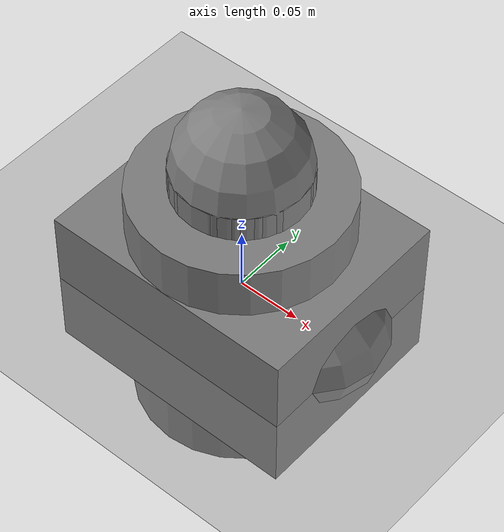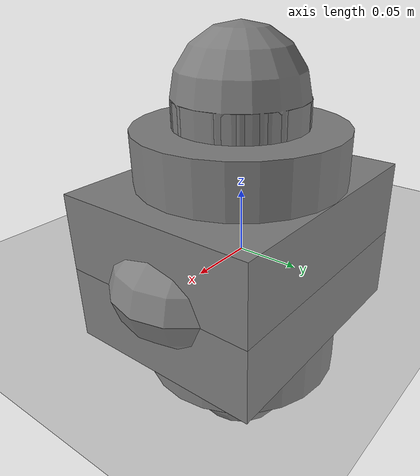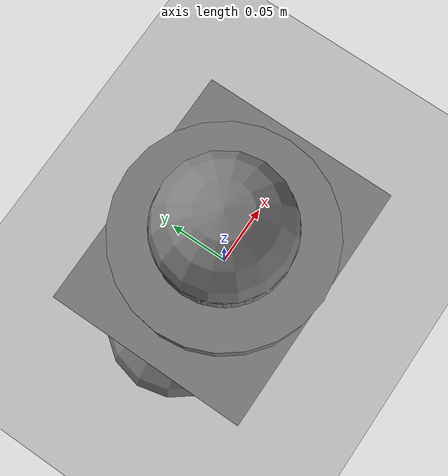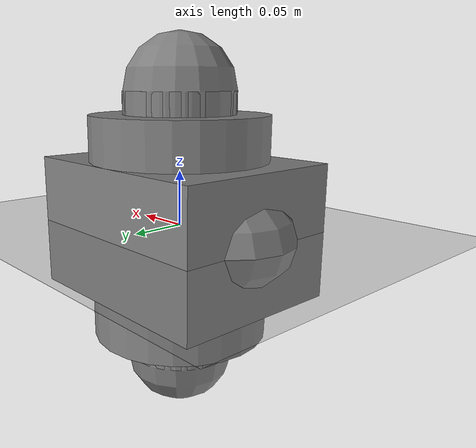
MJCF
<!-- Copyright 2026 -- CONTRIBUTORS. See LICENSE. -->
<mujoco model="convex">
  <worldbody>
    <geom name="floor" type="plane" size="0 0 1"/>
    <body name="egg">
      <freejoint/>
      <geom name="egg" type="ellipsoid" size="0.12 0.08 0.06"/>
    </body>
    <body name="pebble">
      <freejoint/>
      <geom name="pebble" type="ellipsoid" size="0.05 0.07 0.04"/>
    </body>
    <body name="ball">
      <freejoint/>
      <geom name="ball" type="sphere" size="0.08"/>
    </body>
    <body name="pill">
      <freejoint/>
      <geom name="pill" type="capsule" size="0.05 0.12"/>
    </body>
    <body name="rod">
      <freejoint/>
      <geom name="rod" type="capsule" size="0.03 0.1" margin="0.01"/>
    </body>
    <body name="drum">
      <freejoint/>
      <geom name="drum" type="cylinder" size="0.08 0.1"/>
    </body>
    <body name="can">
      <freejoint/>
      <geom name="can" type="cylinder" size="0.05 0.12"/>
    </body>
    <body name="crate">
      <freejoint/>
      <geom name="crate" type="box" size="0.1 0.08 0.06"/>
    </body>
  </worldbody>
</mujoco>
